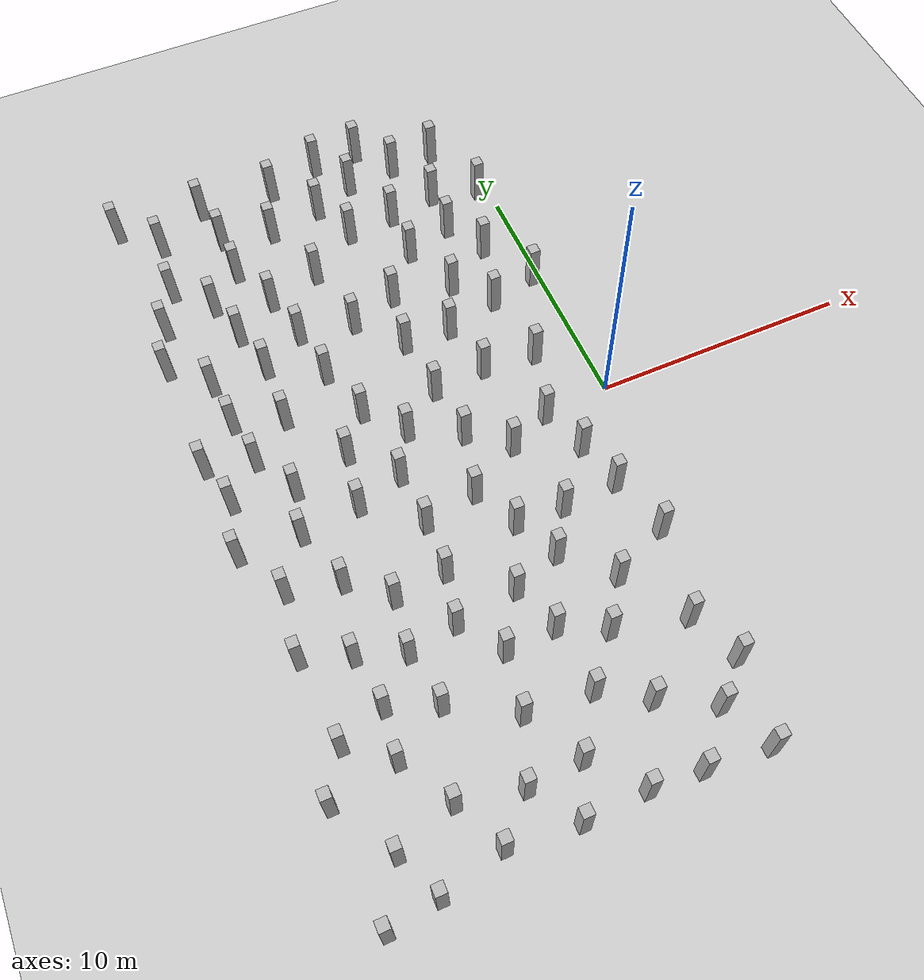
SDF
<sdf version="1.6">
 <world name="randomized_boxes_30m_200_min1_8_max2_5">
  <include><uri>model://sun</uri></include>
  <include><uri>model://ground_plane</uri></include>
  <model name="box_0">
   <static>true</static>
   <pose>-10.246 8.778 1.000 0 0 0</pose>
   <link name="link">
    <visual name="visual"><geometry><box><size>0.4 0.4 2.0</size></box></geometry></visual>
    <collision name="collision"><geometry><box><size>0.4 0.4 2.0</size></box></geometry></collision>
   </link>
  </model>
  <model name="box_1">
   <static>true</static>
   <pose>-11.061 10.729 1.000 0 0 0</pose>
   <link name="link">
    <visual name="visual"><geometry><box><size>0.4 0.4 2.0</size></box></geometry></visual>
    <collision name="collision"><geometry><box><size>0.4 0.4 2.0</size></box></geometry></collision>
   </link>
  </model>
  <model name="box_2">
   <static>true</static>
   <pose>-11.915 7.680 1.000 0 0 0</pose>
   <link name="link">
    <visual name="visual"><geometry><box><size>0.4 0.4 2.0</size></box></geometry></visual>
    <collision name="collision"><geometry><box><size>0.4 0.4 2.0</size></box></geometry></collision>
   </link>
  </model>
  <model name="box_3">
   <static>true</static>
   <pose>-8.207 9.369 1.000 0 0 0</pose>
   <link name="link">
    <visual name="visual"><geometry><box><size>0.4 0.4 2.0</size></box></geometry></visual>
    <collision name="collision"><geometry><box><size>0.4 0.4 2.0</size></box></geometry></collision>
   </link>
  </model>
  <model name="box_4">
   <static>true</static>
   <pose>-6.225 10.786 1.000 0 0 0</pose>
   <link name="link">
    <visual name="visual"><geometry><box><size>0.4 0.4 2.0</size></box></geometry></visual>
    <collision name="collision"><geometry><box><size>0.4 0.4 2.0</size></box></geometry></collision>
   </link>
  </model>
  <model name="box_5">
   <static>true</static>
   <pose>-9.106 12.119 1.000 0 0 0</pose>
   <link name="link">
    <visual name="visual"><geometry><box><size>0.4 0.4 2.0</size></box></geometry></visual>
    <collision name="collision"><geometry><box><size>0.4 0.4 2.0</size></box></geometry></collision>
   </link>
  </model>
  <model name="box_6">
   <static>true</static>
   <pose>-6.987 12.557 1.000 0 0 0</pose>
   <link name="link">
    <visual name="visual"><geometry><box><size>0.4 0.4 2.0</size></box></geometry></visual>
    <collision name="collision"><geometry><box><size>0.4 0.4 2.0</size></box></geometry></collision>
   </link>
  </model>
  <model name="box_7">
   <static>true</static>
   <pose>-4.322 10.979 1.000 0 0 0</pose>
   <link name="link">
    <visual name="visual"><geometry><box><size>0.4 0.4 2.0</size></box></geometry></visual>
    <collision name="collision"><geometry><box><size>0.4 0.4 2.0</size></box></geometry></collision>
   </link>
  </model>
  <model name="box_8">
   <static>true</static>
   <pose>-8.401 14.285 1.000 0 0 0</pose>
   <link name="link">
    <visual name="visual"><geometry><box><size>0.4 0.4 2.0</size></box></geometry></visual>
    <collision name="collision"><geometry><box><size>0.4 0.4 2.0</size></box></geometry></collision>
   </link>
  </model>
  <model name="box_9">
   <static>true</static>
   <pose>-11.465 5.802 1.000 0 0 0</pose>
   <link name="link">
    <visual name="visual"><geometry><box><size>0.4 0.4 2.0</size></box></geometry></visual>
    <collision name="collision"><geometry><box><size>0.4 0.4 2.0</size></box></geometry></collision>
   </link>
  </model>
  <model name="box_10">
   <static>true</static>
   <pose>-4.351 8.894 1.000 0 0 0</pose>
   <link name="link">
    <visual name="visual"><geometry><box><size>0.4 0.4 2.0</size></box></geometry></visual>
    <collision name="collision"><geometry><box><size>0.4 0.4 2.0</size></box></geometry></collision>
   </link>
  </model>
  <model name="box_11">
   <static>true</static>
   <pose>-13.564 5.868 1.000 0 0 0</pose>
   <link name="link">
    <visual name="visual"><geometry><box><size>0.4 0.4 2.0</size></box></geometry></visual>
    <collision name="collision"><geometry><box><size>0.4 0.4 2.0</size></box></geometry></collision>
   </link>
  </model>
  <model name="box_12">
   <static>true</static>
   <pose>-5.818 7.069 1.000 0 0 0</pose>
   <link name="link">
    <visual name="visual"><geometry><box><size>0.4 0.4 2.0</size></box></geometry></visual>
    <collision name="collision"><geometry><box><size>0.4 0.4 2.0</size></box></geometry></collision>
   </link>
  </model>
  <model name="box_13">
   <static>true</static>
   <pose>-11.088 12.579 1.000 0 0 0</pose>
   <link name="link">
    <visual name="visual"><geometry><box><size>0.4 0.4 2.0</size></box></geometry></visual>
    <collision name="collision"><geometry><box><size>0.4 0.4 2.0</size></box></geometry></collision>
   </link>
  </model>
  <model name="box_14">
   <static>true</static>
   <pose>-2.394 11.368 1.000 0 0 0</pose>
   <link name="link">
    <visual name="visual"><geometry><box><size>0.4 0.4 2.0</size></box></geometry></visual>
    <collision name="collision"><geometry><box><size>0.4 0.4 2.0</size></box></geometry></collision>
   </link>
  </model>
  <model name="box_15">
   <static>true</static>
   <pose>-3.470 6.651 1.000 0 0 0</pose>
   <link name="link">
    <visual name="visual"><geometry><box><size>0.4 0.4 2.0</size></box></geometry></visual>
    <collision name="collision"><geometry><box><size>0.4 0.4 2.0</size></box></geometry></collision>
   </link>
  </model>
  <model name="box_16">
   <static>true</static>
   <pose>-11.552 3.354 1.000 0 0 0</pose>
   <link name="link">
    <visual name="visual"><geometry><box><size>0.4 0.4 2.0</size></box></geometry></visual>
    <collision name="collision"><geometry><box><size>0.4 0.4 2.0</size></box></geometry></collision>
   </link>
  </model>
  <model name="box_17">
   <static>true</static>
   <pose>-1.515 13.658 1.000 0 0 0</pose>
   <link name="link">
    <visual name="visual"><geometry><box><size>0.4 0.4 2.0</size></box></geometry></visual>
    <collision name="collision"><geometry><box><size>0.4 0.4 2.0</size></box></geometry></collision>
   </link>
  </model>
  <model name="box_18">
   <static>true</static>
   <pose>-1.558 7.921 1.000 0 0 0</pose>
   <link name="link">
    <visual name="visual"><geometry><box><size>0.4 0.4 2.0</size></box></geometry></visual>
    <collision name="collision"><geometry><box><size>0.4 0.4 2.0</size></box></geometry></collision>
   </link>
  </model>
  <model name="box_19">
   <static>true</static>
   <pose>-11.387 14.458 1.000 0 0 0</pose>
   <link name="link">
    <visual name="visual"><geometry><box><size>0.4 0.4 2.0</size></box></geometry></visual>
    <collision name="collision"><geometry><box><size>0.4 0.4 2.0</size></box></geometry></collision>
   </link>
  </model>
  <model name="box_20">
   <static>true</static>
   <pose>-13.119 2.082 1.000 0 0 0</pose>
   <link name="link">
    <visual name="visual"><geometry><box><size>0.4 0.4 2.0</size></box></geometry></visual>
    <collision name="collision"><geometry><box><size>0.4 0.4 2.0</size></box></geometry></collision>
   </link>
  </model>
  <model name="box_21">
   <static>true</static>
   <pose>-13.415 13.215 1.000 0 0 0</pose>
   <link name="link">
    <visual name="visual"><geometry><box><size>0.4 0.4 2.0</size></box></geometry></visual>
    <collision name="collision"><geometry><box><size>0.4 0.4 2.0</size></box></geometry></collision>
   </link>
  </model>
  <model name="box_22">
   <static>true</static>
   <pose>-4.374 4.715 1.000 0 0 0</pose>
   <link name="link">
    <visual name="visual"><geometry><box><size>0.4 0.4 2.0</size></box></geometry></visual>
    <collision name="collision"><geometry><box><size>0.4 0.4 2.0</size></box></geometry></collision>
   </link>
  </model>
  <model name="box_23">
   <static>true</static>
   <pose>-13.395 3.943 1.000 0 0 0</pose>
   <link name="link">
    <visual name="visual"><geometry><box><size>0.4 0.4 2.0</size></box></geometry></visual>
    <collision name="collision"><geometry><box><size>0.4 0.4 2.0</size></box></geometry></collision>
   </link>
  </model>
  <model name="box_24">
   <static>true</static>
   <pose>-0.345 5.829 1.000 0 0 0</pose>
   <link name="link">
    <visual name="visual"><geometry><box><size>0.4 0.4 2.0</size></box></geometry></visual>
    <collision name="collision"><geometry><box><size>0.4 0.4 2.0</size></box></geometry></collision>
   </link>
  </model>
  <model name="box_26">
   <static>true</static>
   <pose>-3.931 2.485 1.000 0 0 0</pose>
   <link name="link">
    <visual name="visual"><geometry><box><size>0.4 0.4 2.0</size></box></geometry></visual>
    <collision name="collision"><geometry><box><size>0.4 0.4 2.0</size></box></geometry></collision>
   </link>
  </model>
  <model name="box_27">
   <static>true</static>
   <pose>-1.877 2.310 1.000 0 0 0</pose>
   <link name="link">
    <visual name="visual"><geometry><box><size>0.4 0.4 2.0</size></box></geometry></visual>
    <collision name="collision"><geometry><box><size>0.4 0.4 2.0</size></box></geometry></collision>
   </link>
  </model>
  <model name="box_28">
   <static>true</static>
   <pose>-0.510 10.927 1.000 0 0 0</pose>
   <link name="link">
    <visual name="visual"><geometry><box><size>0.4 0.4 2.0</size></box></geometry></visual>
    <collision name="collision"><geometry><box><size>0.4 0.4 2.0</size></box></geometry></collision>
   </link>
  </model>
  <model name="box_29">
   <static>true</static>
   <pose>-14.449 0.755 1.000 0 0 0</pose>
   <link name="link">
    <visual name="visual"><geometry><box><size>0.4 0.4 2.0</size></box></geometry></visual>
    <collision name="collision"><geometry><box><size>0.4 0.4 2.0</size></box></geometry></collision>
   </link>
  </model>
  <model name="box_30">
   <static>true</static>
   <pose>-9.485 4.655 1.000 0 0 0</pose>
   <link name="link">
    <visual name="visual"><geometry><box><size>0.4 0.4 2.0</size></box></geometry></visual>
    <collision name="collision"><geometry><box><size>0.4 0.4 2.0</size></box></geometry></collision>
   </link>
  </model>
  <model name="box_31">
   <static>true</static>
   <pose>-6.005 2.301 1.000 0 0 0</pose>
   <link name="link">
    <visual name="visual"><geometry><box><size>0.4 0.4 2.0</size></box></geometry></visual>
    <collision name="collision"><geometry><box><size>0.4 0.4 2.0</size></box></geometry></collision>
   </link>
  </model>
  <model name="box_32">
   <static>true</static>
   <pose>-14.887 -1.297 1.000 0 0 0</pose>
   <link name="link">
    <visual name="visual"><geometry><box><size>0.4 0.4 2.0</size></box></geometry></visual>
    <collision name="collision"><geometry><box><size>0.4 0.4 2.0</size></box></geometry></collision>
   </link>
  </model>
  <model name="box_34">
   <static>true</static>
   <pose>-8.852 2.486 1.000 0 0 0</pose>
   <link name="link">
    <visual name="visual"><geometry><box><size>0.4 0.4 2.0</size></box></geometry></visual>
    <collision name="collision"><geometry><box><size>0.4 0.4 2.0</size></box></geometry></collision>
   </link>
  </model>
  <model name="box_35">
   <static>true</static>
   <pose>-13.683 10.789 1.000 0 0 0</pose>
   <link name="link">
    <visual name="visual"><geometry><box><size>0.4 0.4 2.0</size></box></geometry></visual>
    <collision name="collision"><geometry><box><size>0.4 0.4 2.0</size></box></geometry></collision>
   </link>
  </model>
  <model name="box_36">
   <static>true</static>
   <pose>-12.194 0.338 1.000 0 0 0</pose>
   <link name="link">
    <visual name="visual"><geometry><box><size>0.4 0.4 2.0</size></box></geometry></visual>
    <collision name="collision"><geometry><box><size>0.4 0.4 2.0</size></box></geometry></collision>
   </link>
  </model>
  <model name="box_37">
   <static>true</static>
   <pose>-13.839 -3.276 1.000 0 0 0</pose>
   <link name="link">
    <visual name="visual"><geometry><box><size>0.4 0.4 2.0</size></box></geometry></visual>
    <collision name="collision"><geometry><box><size>0.4 0.4 2.0</size></box></geometry></collision>
   </link>
  </model>
  <model name="box_38">
   <static>true</static>
   <pose>-9.988 0.983 1.000 0 0 0</pose>
   <link name="link">
    <visual name="visual"><geometry><box><size>0.4 0.4 2.0</size></box></geometry></visual>
    <collision name="collision"><geometry><box><size>0.4 0.4 2.0</size></box></geometry></collision>
   </link>
  </model>
  <model name="box_41">
   <static>true</static>
   <pose>-6.281 14.894 1.000 0 0 0</pose>
   <link name="link">
    <visual name="visual"><geometry><box><size>0.4 0.4 2.0</size></box></geometry></visual>
    <collision name="collision"><geometry><box><size>0.4 0.4 2.0</size></box></geometry></collision>
   </link>
  </model>
  <model name="box_42">
   <static>true</static>
   <pose>-11.909 -3.736 1.000 0 0 0</pose>
   <link name="link">
    <visual name="visual"><geometry><box><size>0.4 0.4 2.0</size></box></geometry></visual>
    <collision name="collision"><geometry><box><size>0.4 0.4 2.0</size></box></geometry></collision>
   </link>
  </model>
  <model name="box_43">
   <static>true</static>
   <pose>-14.222 -5.723 1.000 0 0 0</pose>
   <link name="link">
    <visual name="visual"><geometry><box><size>0.4 0.4 2.0</size></box></geometry></visual>
    <collision name="collision"><geometry><box><size>0.4 0.4 2.0</size></box></geometry></collision>
   </link>
  </model>
  <model name="box_44">
   <static>true</static>
   <pose>-7.675 6.455 1.000 0 0 0</pose>
   <link name="link">
    <visual name="visual"><geometry><box><size>0.4 0.4 2.0</size></box></geometry></visual>
    <collision name="collision"><geometry><box><size>0.4 0.4 2.0</size></box></geometry></collision>
   </link>
  </model>
  <model name="box_45">
   <static>true</static>
   <pose>-7.634 1.032 1.000 0 0 0</pose>
   <link name="link">
    <visual name="visual"><geometry><box><size>0.4 0.4 2.0</size></box></geometry></visual>
    <collision name="collision"><geometry><box><size>0.4 0.4 2.0</size></box></geometry></collision>
   </link>
  </model>
  <model name="box_49">
   <static>true</static>
   <pose>-5.762 0.071 1.000 0 0 0</pose>
   <link name="link">
    <visual name="visual"><geometry><box><size>0.4 0.4 2.0</size></box></geometry></visual>
    <collision name="collision"><geometry><box><size>0.4 0.4 2.0</size></box></geometry></collision>
   </link>
  </model>
  <model name="box_50">
   <static>true</static>
   <pose>-6.221 4.748 1.000 0 0 0</pose>
   <link name="link">
    <visual name="visual"><geometry><box><size>0.4 0.4 2.0</size></box></geometry></visual>
    <collision name="collision"><geometry><box><size>0.4 0.4 2.0</size></box></geometry></collision>
   </link>
  </model>
  <model name="box_51">
   <static>true</static>
   <pose>-12.521 -6.377 1.000 0 0 0</pose>
   <link name="link">
    <visual name="visual"><geometry><box><size>0.4 0.4 2.0</size></box></geometry></visual>
    <collision name="collision"><geometry><box><size>0.4 0.4 2.0</size></box></geometry></collision>
   </link>
  </model>
  <model name="box_52">
   <static>true</static>
   <pose>-2.267 5.288 1.000 0 0 0</pose>
   <link name="link">
    <visual name="visual"><geometry><box><size>0.4 0.4 2.0</size></box></geometry></visual>
    <collision name="collision"><geometry><box><size>0.4 0.4 2.0</size></box></geometry></collision>
   </link>
  </model>
  <model name="box_54">
   <static>true</static>
   <pose>-10.359 -1.160 1.000 0 0 0</pose>
   <link name="link">
    <visual name="visual"><geometry><box><size>0.4 0.4 2.0</size></box></geometry></visual>
    <collision name="collision"><geometry><box><size>0.4 0.4 2.0</size></box></geometry></collision>
   </link>
  </model>
  <model name="box_55">
   <static>true</static>
   <pose>-8.450 -2.757 1.000 0 0 0</pose>
   <link name="link">
    <visual name="visual"><geometry><box><size>0.4 0.4 2.0</size></box></geometry></visual>
    <collision name="collision"><geometry><box><size>0.4 0.4 2.0</size></box></geometry></collision>
   </link>
  </model>
  <model name="box_56">
   <static>true</static>
   <pose>-14.916 7.249 1.000 0 0 0</pose>
   <link name="link">
    <visual name="visual"><geometry><box><size>0.4 0.4 2.0</size></box></geometry></visual>
    <collision name="collision"><geometry><box><size>0.4 0.4 2.0</size></box></geometry></collision>
   </link>
  </model>
  <model name="box_57">
   <static>true</static>
   <pose>-6.402 -2.342 1.000 0 0 0</pose>
   <link name="link">
    <visual name="visual"><geometry><box><size>0.4 0.4 2.0</size></box></geometry></visual>
    <collision name="collision"><geometry><box><size>0.4 0.4 2.0</size></box></geometry></collision>
   </link>
  </model>
  <model name="box_59">
   <static>true</static>
   <pose>-4.330 -1.088 1.000 0 0 0</pose>
   <link name="link">
    <visual name="visual"><geometry><box><size>0.4 0.4 2.0</size></box></geometry></visual>
    <collision name="collision"><geometry><box><size>0.4 0.4 2.0</size></box></geometry></collision>
   </link>
  </model>
  <model name="box_64">
   <static>true</static>
   <pose>-3.318 13.503 1.000 0 0 0</pose>
   <link name="link">
    <visual name="visual"><geometry><box><size>0.4 0.4 2.0</size></box></geometry></visual>
    <collision name="collision"><geometry><box><size>0.4 0.4 2.0</size></box></geometry></collision>
   </link>
  </model>
  <model name="box_68">
   <static>true</static>
   <pose>-12.255 -8.394 1.000 0 0 0</pose>
   <link name="link">
    <visual name="visual"><geometry><box><size>0.4 0.4 2.0</size></box></geometry></visual>
    <collision name="collision"><geometry><box><size>0.4 0.4 2.0</size></box></geometry></collision>
   </link>
  </model>
  <model name="box_70">
   <static>true</static>
   <pose>-12.484 -10.199 1.000 0 0 0</pose>
   <link name="link">
    <visual name="visual"><geometry><box><size>0.4 0.4 2.0</size></box></geometry></visual>
    <collision name="collision"><geometry><box><size>0.4 0.4 2.0</size></box></geometry></collision>
   </link>
  </model>
  <model name="box_72">
   <static>true</static>
   <pose>-14.426 9.073 1.000 0 0 0</pose>
   <link name="link">
    <visual name="visual"><geometry><box><size>0.4 0.4 2.0</size></box></geometry></visual>
    <collision name="collision"><geometry><box><size>0.4 0.4 2.0</size></box></geometry></collision>
   </link>
  </model>
  <model name="box_73">
   <static>true</static>
   <pose>-13.966 -9.010 1.000 0 0 0</pose>
   <link name="link">
    <visual name="visual"><geometry><box><size>0.4 0.4 2.0</size></box></geometry></visual>
    <collision name="collision"><geometry><box><size>0.4 0.4 2.0</size></box></geometry></collision>
   </link>
  </model>
  <model name="box_75">
   <static>true</static>
   <pose>-5.570 -4.057 1.000 0 0 0</pose>
   <link name="link">
    <visual name="visual"><geometry><box><size>0.4 0.4 2.0</size></box></geometry></visual>
    <collision name="collision"><geometry><box><size>0.4 0.4 2.0</size></box></geometry></collision>
   </link>
  </model>
  <model name="box_76">
   <static>true</static>
   <pose>-8.557 -0.604 1.000 0 0 0</pose>
   <link name="link">
    <visual name="visual"><geometry><box><size>0.4 0.4 2.0</size></box></geometry></visual>
    <collision name="collision"><geometry><box><size>0.4 0.4 2.0</size></box></geometry></collision>
   </link>
  </model>
  <model name="box_81">
   <static>true</static>
   <pose>-11.388 -12.140 1.000 0 0 0</pose>
   <link name="link">
    <visual name="visual"><geometry><box><size>0.4 0.4 2.0</size></box></geometry></visual>
    <collision name="collision"><geometry><box><size>0.4 0.4 2.0</size></box></geometry></collision>
   </link>
  </model>
  <model name="box_82">
   <static>true</static>
   <pose>-3.743 -4.115 1.000 0 0 0</pose>
   <link name="link">
    <visual name="visual"><geometry><box><size>0.4 0.4 2.0</size></box></geometry></visual>
    <collision name="collision"><geometry><box><size>0.4 0.4 2.0</size></box></geometry></collision>
   </link>
  </model>
  <model name="box_83">
   <static>true</static>
   <pose>-9.124 -12.634 1.000 0 0 0</pose>
   <link name="link">
    <visual name="visual"><geometry><box><size>0.4 0.4 2.0</size></box></geometry></visual>
    <collision name="collision"><geometry><box><size>0.4 0.4 2.0</size></box></geometry></collision>
   </link>
  </model>
  <model name="box_85">
   <static>true</static>
   <pose>-13.567 -12.859 1.000 0 0 0</pose>
   <link name="link">
    <visual name="visual"><geometry><box><size>0.4 0.4 2.0</size></box></geometry></visual>
    <collision name="collision"><geometry><box><size>0.4 0.4 2.0</size></box></geometry></collision>
   </link>
  </model>
  <model name="box_87">
   <static>true</static>
   <pose>-1.613 -3.964 1.000 0 0 0</pose>
   <link name="link">
    <visual name="visual"><geometry><box><size>0.4 0.4 2.0</size></box></geometry></visual>
    <collision name="collision"><geometry><box><size>0.4 0.4 2.0</size></box></geometry></collision>
   </link>
  </model>
  <model name="box_91">
   <static>true</static>
   <pose>-10.506 -4.962 1.000 0 0 0</pose>
   <link name="link">
    <visual name="visual"><geometry><box><size>0.4 0.4 2.0</size></box></geometry></visual>
    <collision name="collision"><geometry><box><size>0.4 0.4 2.0</size></box></geometry></collision>
   </link>
  </model>
  <model name="box_92">
   <static>true</static>
   <pose>-2.661 -0.318 1.000 0 0 0</pose>
   <link name="link">
    <visual name="visual"><geometry><box><size>0.4 0.4 2.0</size></box></geometry></visual>
    <collision name="collision"><geometry><box><size>0.4 0.4 2.0</size></box></geometry></collision>
   </link>
  </model>
  <model name="box_93">
   <static>true</static>
   <pose>-12.587 -1.434 1.000 0 0 0</pose>
   <link name="link">
    <visual name="visual"><geometry><box><size>0.4 0.4 2.0</size></box></geometry></visual>
    <collision name="collision"><geometry><box><size>0.4 0.4 2.0</size></box></geometry></collision>
   </link>
  </model>
  <model name="box_95">
   <static>true</static>
   <pose>-8.236 -10.431 1.000 0 0 0</pose>
   <link name="link">
    <visual name="visual"><geometry><box><size>0.4 0.4 2.0</size></box></geometry></visual>
    <collision name="collision"><geometry><box><size>0.4 0.4 2.0</size></box></geometry></collision>
   </link>
  </model>
  <model name="box_96">
   <static>true</static>
   <pose>-8.979 -6.681 1.000 0 0 0</pose>
   <link name="link">
    <visual name="visual"><geometry><box><size>0.4 0.4 2.0</size></box></geometry></visual>
    <collision name="collision"><geometry><box><size>0.4 0.4 2.0</size></box></geometry></collision>
   </link>
  </model>
  <model name="box_97">
   <static>true</static>
   <pose>-8.551 -4.773 1.000 0 0 0</pose>
   <link name="link">
    <visual name="visual"><geometry><box><size>0.4 0.4 2.0</size></box></geometry></visual>
    <collision name="collision"><geometry><box><size>0.4 0.4 2.0</size></box></geometry></collision>
   </link>
  </model>
  <model name="box_100">
   <static>true</static>
   <pose>-0.994 -6.262 1.000 0 0 0</pose>
   <link name="link">
    <visual name="visual"><geometry><box><size>0.4 0.4 2.0</size></box></geometry></visual>
    <collision name="collision"><geometry><box><size>0.4 0.4 2.0</size></box></geometry></collision>
   </link>
  </model>
  <model name="box_101">
   <static>true</static>
   <pose>-7.862 -8.239 1.000 0 0 0</pose>
   <link name="link">
    <visual name="visual"><geometry><box><size>0.4 0.4 2.0</size></box></geometry></visual>
    <collision name="collision"><geometry><box><size>0.4 0.4 2.0</size></box></geometry></collision>
   </link>
  </model>
  <model name="box_102">
   <static>true</static>
   <pose>-4.786 -5.696 1.000 0 0 0</pose>
   <link name="link">
    <visual name="visual"><geometry><box><size>0.4 0.4 2.0</size></box></geometry></visual>
    <collision name="collision"><geometry><box><size>0.4 0.4 2.0</size></box></geometry></collision>
   </link>
  </model>
  <model name="box_109">
   <static>true</static>
   <pose>-3.199 -7.306 1.000 0 0 0</pose>
   <link name="link">
    <visual name="visual"><geometry><box><size>0.4 0.4 2.0</size></box></geometry></visual>
    <collision name="collision"><geometry><box><size>0.4 0.4 2.0</size></box></geometry></collision>
   </link>
  </model>
  <model name="box_111">
   <static>true</static>
   <pose>-2.046 -2.120 1.000 0 0 0</pose>
   <link name="link">
    <visual name="visual"><geometry><box><size>0.4 0.4 2.0</size></box></geometry></visual>
    <collision name="collision"><geometry><box><size>0.4 0.4 2.0</size></box></geometry></collision>
   </link>
  </model>
  <model name="box_115">
   <static>true</static>
   <pose>-10.513 -9.082 1.000 0 0 0</pose>
   <link name="link">
    <visual name="visual"><geometry><box><size>0.4 0.4 2.0</size></box></geometry></visual>
    <collision name="collision"><geometry><box><size>0.4 0.4 2.0</size></box></geometry></collision>
   </link>
  </model>
  <model name="box_120">
   <static>true</static>
   <pose>-5.806 -10.633 1.000 0 0 0</pose>
   <link name="link">
    <visual name="visual"><geometry><box><size>0.4 0.4 2.0</size></box></geometry></visual>
    <collision name="collision"><geometry><box><size>0.4 0.4 2.0</size></box></geometry></collision>
   </link>
  </model>
  <model name="box_123">
   <static>true</static>
   <pose>-4.357 -8.949 1.000 0 0 0</pose>
   <link name="link">
    <visual name="visual"><geometry><box><size>0.4 0.4 2.0</size></box></geometry></visual>
    <collision name="collision"><geometry><box><size>0.4 0.4 2.0</size></box></geometry></collision>
   </link>
  </model>
  <model name="box_126">
   <static>true</static>
   <pose>-14.676 -14.793 1.000 0 0 0</pose>
   <link name="link">
    <visual name="visual"><geometry><box><size>0.4 0.4 2.0</size></box></geometry></visual>
    <collision name="collision"><geometry><box><size>0.4 0.4 2.0</size></box></geometry></collision>
   </link>
  </model>
  <model name="box_129">
   <static>true</static>
   <pose>-10.504 -13.994 1.000 0 0 0</pose>
   <link name="link">
    <visual name="visual"><geometry><box><size>0.4 0.4 2.0</size></box></geometry></visual>
    <collision name="collision"><geometry><box><size>0.4 0.4 2.0</size></box></geometry></collision>
   </link>
  </model>
  <model name="box_132">
   <static>true</static>
   <pose>-4.191 -11.680 1.000 0 0 0</pose>
   <link name="link">
    <visual name="visual"><geometry><box><size>0.4 0.4 2.0</size></box></geometry></visual>
    <collision name="collision"><geometry><box><size>0.4 0.4 2.0</size></box></geometry></collision>
   </link>
  </model>
  <model name="box_137">
   <static>true</static>
   <pose>-7.985 -14.288 1.000 0 0 0</pose>
   <link name="link">
    <visual name="visual"><geometry><box><size>0.4 0.4 2.0</size></box></geometry></visual>
    <collision name="collision"><geometry><box><size>0.4 0.4 2.0</size></box></geometry></collision>
   </link>
  </model>
  <model name="box_142">
   <static>true</static>
   <pose>-2.256 -12.737 1.000 0 0 0</pose>
   <link name="link">
    <visual name="visual"><geometry><box><size>0.4 0.4 2.0</size></box></geometry></visual>
    <collision name="collision"><geometry><box><size>0.4 0.4 2.0</size></box></geometry></collision>
   </link>
  </model>
  <model name="box_147">
   <static>true</static>
   <pose>-5.671 -14.206 1.000 0 0 0</pose>
   <link name="link">
    <visual name="visual"><geometry><box><size>0.4 0.4 2.0</size></box></geometry></visual>
    <collision name="collision"><geometry><box><size>0.4 0.4 2.0</size></box></geometry></collision>
   </link>
  </model>
  <model name="box_149">
   <static>true</static>
   <pose>-0.941 -11.507 1.000 0 0 0</pose>
   <link name="link">
    <visual name="visual"><geometry><box><size>0.4 0.4 2.0</size></box></geometry></visual>
    <collision name="collision"><geometry><box><size>0.4 0.4 2.0</size></box></geometry></collision>
   </link>
  </model>
  <model name="box_150">
   <static>true</static>
   <pose>-1.697 -9.608 1.000 0 0 0</pose>
   <link name="link">
    <visual name="visual"><geometry><box><size>0.4 0.4 2.0</size></box></geometry></visual>
    <collision name="collision"><geometry><box><size>0.4 0.4 2.0</size></box></geometry></collision>
   </link>
  </model>
  <model name="box_154">
   <static>true</static>
   <pose>-3.786 -14.349 1.000 0 0 0</pose>
   <link name="link">
    <visual name="visual"><geometry><box><size>0.4 0.4 2.0</size></box></geometry></visual>
    <collision name="collision"><geometry><box><size>0.4 0.4 2.0</size></box></geometry></collision>
   </link>
  </model>
  <model name="box_160">
   <static>true</static>
   <pose>-14.935 -10.652 1.000 0 0 0</pose>
   <link name="link">
    <visual name="visual"><geometry><box><size>0.4 0.4 2.0</size></box></geometry></visual>
    <collision name="collision"><geometry><box><size>0.4 0.4 2.0</size></box></geometry></collision>
   </link>
  </model>
  <model name="box_169">
   <static>true</static>
   <pose>-1.432 -14.571 1.000 0 0 0</pose>
   <link name="link">
    <visual name="visual"><geometry><box><size>0.4 0.4 2.0</size></box></geometry></visual>
    <collision name="collision"><geometry><box><size>0.4 0.4 2.0</size></box></geometry></collision>
   </link>
  </model>
  <model name="box_170">
   <static>true</static>
   <pose>-7.123 -12.516 1.000 0 0 0</pose>
   <link name="link">
    <visual name="visual"><geometry><box><size>0.4 0.4 2.0</size></box></geometry></visual>
    <collision name="collision"><geometry><box><size>0.4 0.4 2.0</size></box></geometry></collision>
   </link>
  </model>
  <model name="box_175">
   <static>true</static>
   <pose>-6.617 -6.349 1.000 0 0 0</pose>
   <link name="link">
    <visual name="visual"><geometry><box><size>0.4 0.4 2.0</size></box></geometry></visual>
    <collision name="collision"><geometry><box><size>0.4 0.4 2.0</size></box></geometry></collision>
   </link>
  </model>
  <model name="box_180">
   <static>true</static>
   <pose>-14.835 14.649 1.000 0 0 0</pose>
   <link name="link">
    <visual name="visual"><geometry><box><size>0.4 0.4 2.0</size></box></geometry></visual>
    <collision name="collision"><geometry><box><size>0.4 0.4 2.0</size></box></geometry></collision>
   </link>
  </model>
  <model name="box_183">
   <static>true</static>
   <pose>-10.819 -7.008 1.000 0 0 0</pose>
   <link name="link">
    <visual name="visual"><geometry><box><size>0.4 0.4 2.0</size></box></geometry></visual>
    <collision name="collision"><geometry><box><size>0.4 0.4 2.0</size></box></geometry></collision>
   </link>
  </model>
  <model name="box_189">
   <static>true</static>
   <pose>-5.325 13.289 1.000 0 0 0</pose>
   <link name="link">
    <visual name="visual"><geometry><box><size>0.4 0.4 2.0</size></box></geometry></visual>
    <collision name="collision"><geometry><box><size>0.4 0.4 2.0</size></box></geometry></collision>
   </link>
  </model>
  <model name="box_190">
   <static>true</static>
   <pose>-12.841 -14.549 1.000 0 0 0</pose>
   <link name="link">
    <visual name="visual"><geometry><box><size>0.4 0.4 2.0</size></box></geometry></visual>
    <collision name="collision"><geometry><box><size>0.4 0.4 2.0</size></box></geometry></collision>
   </link>
  </model>
  <model name="box_192">
   <static>true</static>
   <pose>-14.894 2.544 1.000 0 0 0</pose>
   <link name="link">
    <visual name="visual"><geometry><box><size>0.4 0.4 2.0</size></box></geometry></visual>
    <collision name="collision"><geometry><box><size>0.4 0.4 2.0</size></box></geometry></collision>
   </link>
  </model>
  <model name="box_193">
   <static>true</static>
   <pose>-4.448 14.963 1.000 0 0 0</pose>
   <link name="link">
    <visual name="visual"><geometry><box><size>0.4 0.4 2.0</size></box></geometry></visual>
    <collision name="collision"><geometry><box><size>0.4 0.4 2.0</size></box></geometry></collision>
   </link>
  </model>
  <model name="box_194">
   <static>true</static>
   <pose>-12.386 9.440 1.000 0 0 0</pose>
   <link name="link">
    <visual name="visual"><geometry><box><size>0.4 0.4 2.0</size></box></geometry></visual>
    <collision name="collision"><geometry><box><size>0.4 0.4 2.0</size></box></geometry></collision>
   </link>
  </model>
  <model name="box_195">
   <static>true</static>
   <pose>-9.792 6.807 1.000 0 0 0</pose>
   <link name="link">
    <visual name="visual"><geometry><box><size>0.4 0.4 2.0</size></box></geometry></visual>
    <collision name="collision"><geometry><box><size>0.4 0.4 2.0</size></box></geometry></collision>
   </link>
  </model>
  <model name="box_196">
   <static>true</static>
   <pose>-2.478 9.510 1.000 0 0 0</pose>
   <link name="link">
    <visual name="visual"><geometry><box><size>0.4 0.4 2.0</size></box></geometry></visual>
    <collision name="collision"><geometry><box><size>0.4 0.4 2.0</size></box></geometry></collision>
   </link>
  </model>
  <model name="box_197">
   <static>true</static>
   <pose>-6.001 -8.146 1.000 0 0 0</pose>
   <link name="link">
    <visual name="visual"><geometry><box><size>0.4 0.4 2.0</size></box></geometry></visual>
    <collision name="collision"><geometry><box><size>0.4 0.4 2.0</size></box></geometry></collision>
   </link>
  </model>
 </world>
</sdf>
